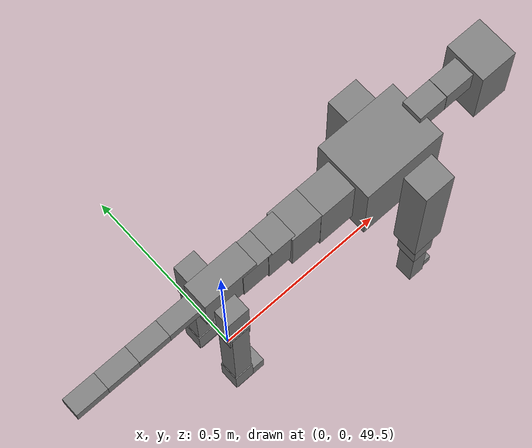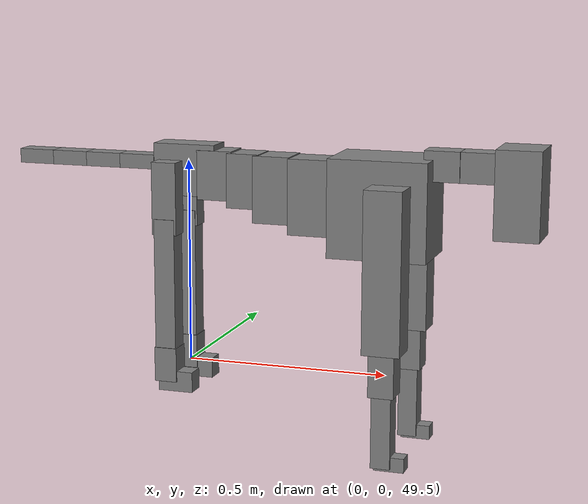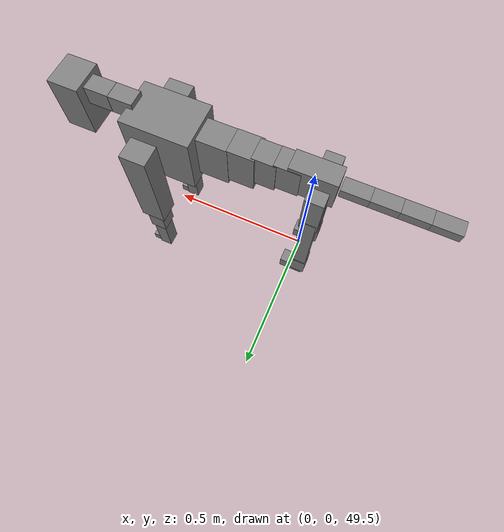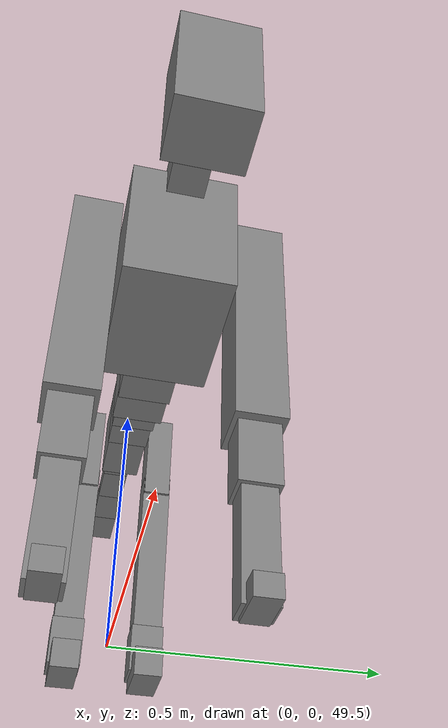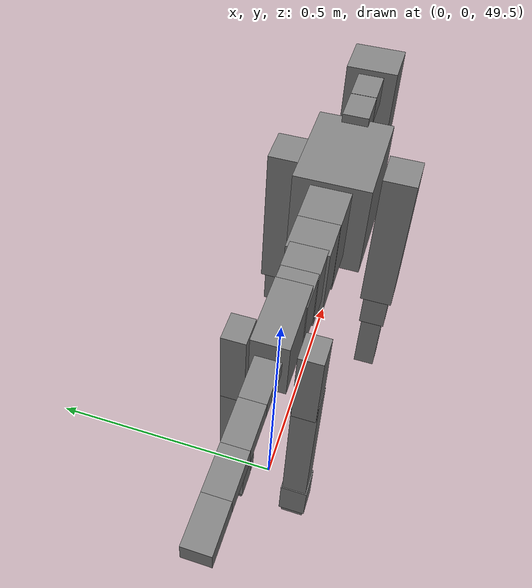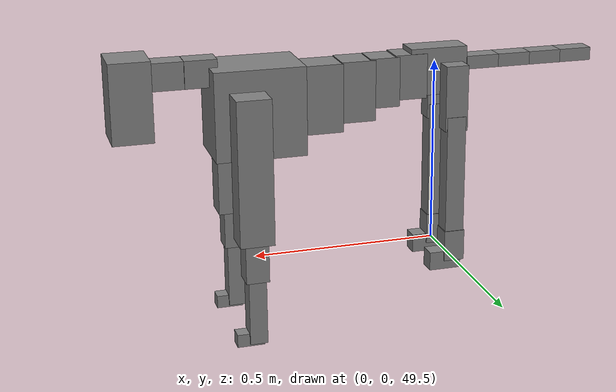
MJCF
<mujoco model="dog">

    <default>
        <joint armature="0.02" stiffness="1" damping="0.2" limited="true"/>
        <geom condim="3" friction="1 0.05 0.05" margin="0.01"/>
        <motor ctrllimited="true" ctrlrange="-1.0 1.0" forcelimited="true" gear="50"/>
    </default>

    <compiler inertiafromgeom="true" angle="radian"/>

    <option timestep="0.016" iterations="50" tolerance="1e-10" solver="Newton" jacobian="dense" cone="pyramidal"/>

    <size nconmax="20000" njmax="60000" nstack="5000000"/>
    <visual>
        <map force="0.1" zfar="30"/>
        <rgba haze="0.15 0.25 0.35 1"/>
        <quality shadowsize="2048"/>
        <global offwidth="800" offheight="800"/>
    </visual>

    <asset>
        <texture type="skybox" builtin="gradient" rgb1="0.3 0.5 0.7" rgb2="0 0 0" width="512" height="512"/>
        <texture name="texplane" type="2d" builtin="checker" rgb1=".2 .3 .4" rgb2=".1 0.15 0.2" width="512" height="512"
                 mark="cross" markrgb=".8 .8 .8"/>
        <texture name="texgeom" type="cube" builtin="flat" mark="cross" width="127" height="1278" rgb1="0.8 0.6 0.4"
                 rgb2="0.8 0.6 0.4" markrgb="1 1 1" random="0.01"/>

        <material name="matplane" reflectance="0.3" texture="texplane" texrepeat="1 1" texuniform="true"/>
        <material name="matgeom" texture="texgeom" texuniform="true" rgba="0.8 0.6 .4 1"/>
    </asset>

    <worldbody>
        <geom name="floor" pos="0 0 0" size="0 0 .25" type="plane" material="matplane" condim="3"/>

        <light directional="false" diffuse=".2 .2 .2" specular="0 0 0" pos="0 0 5" dir="0 0 -1" castshadow="false"/>
        <light mode="targetbodycom" target="torso" directional="false" diffuse=".8 .8 .8" specular="0.3 0.3 0.3"
               pos="0 0 4.0" dir="0 0 -1"/>

        <body name="root" pos="0 0 50">
            <freejoint name="root_1"/>
            <geom type="box" pos="0 0 -0.02" size="0.0774  0.0358  0.063" density="2030"/>

            <body name="spine1" pos="0.054 0 0">
                <joint name="spine1_y" axis="0 1 0" range="0 0.7" limited="true"/>
                <geom type="box" pos="0.02375 0 -0.03" size="0.04375  0.0375  0.05985" density="2030"/>

                <body name="spine2" pos="0.0612 0 0">
                    <joint name="spine2_y" axis="0 1 0" range="-0.15 0.15" limited="true"/>
                    <geom type="box" pos="0.03555  0  -0.04" size="0.04055  0.039  0.06615" density="2030"/>

                    <body name="spine3" pos="0.0730 0 0">
                        <joint name="spine3_y" axis="0 1 0" range="-0.15 0.15" limited="true"/>
                        <geom type="box" pos="0.03555  0  -0.057" size="0.04555  0.0445  0.081" density="2030"/>

                        <body name="spine4" pos="0.0780 0 0">
                            <joint name="spine4_y" axis="0 1 0" range="-0.15 0.15" limited="true"/>
                            <geom type="box" pos="0.05265  0  -0.07" size="0.05265  0.045  0.09135" density="2030"/>

                            <body name="torso" pos="0.1082 0 0">
                                <joint name="torso_y" axis="0 1 0" range="-0.15 0.15" limited="true"/>
                                <geom type="box" pos="0.11925  0  -0.085" size="0.11925  0.085  0.11745"
                                      density="2030"/>

                                <body name="neck1" pos="0.2160  0   0.0180">
                                    <joint name="neck1_y" axis="0 1 0" range="-1.2  -1" limited="true"/>
                                    <geom type="box" pos="0.0423  0  0" size="0.0423  0.03  0.036" density="2325"/>

                                    <body name="neck2" pos="0.0853  0  0">
                                        <joint name="neck2_y" axis="0 1 0" range="0.1  0" limited="true"/>
                                        <geom type="box" pos="0.0423  0  0" size="0.0423  0.03  0.036" density="2325"/>

                                        <body name="head" pos="0.0853  0  0">
                                            <joint name="head_y" axis="0 1 0" range="-0.3  -0.2" limited="true"/>
                                            <geom type="box" pos="0.0531  0  -0.055" size="0.0531  0.06  0.1044"
                                                  density="4030"/>

                                        </body>
                                    </body>
                                </body>

                                <body name="front_shoulder" pos="0.156  0   -0.0480">
                                    <joint name="front_shoulder_y" axis="0 1 0" range="-1 1.5" limited="true"/>
                                    <geom type="box" pos="0 0.13 -0.1658" size="0.0453  0.0387  0.1924" density="1158"/>
                                    <geom type="box" pos="0 -0.13 -0.1658" size="0.0453  0.0387  0.1924"
                                          density="1158"/>

                                    <body name="front_elbow" pos="0  0  -0.3316">
                                        <joint name="front_elbow_y" axis="0 1 0" range="-2 0" limited="true"/>
                                        <geom type="box" pos="0 0.13 -0.0642" size="0.0306  0.0313  0.0642"
                                              density="1081"/>
                                        <geom type="box" pos="0 -0.13 -0.0642" size="0.0306  0.0313  0.0642"
                                              density="1081"/>

                                        <body name="front_wrist" pos="0  0  -0.1284">
                                            <joint name="front_wrist_y" axis="0 1 0" range="-0.2 0" limited="true"/>
                                            <geom type="box" pos="0 0.13 -0.0798" size="0.0234  0.0260  0.0929"
                                                  density="1664"/>
                                            <geom type="box" pos="0 -0.13 -0.0798" size="0.0234  0.0260  0.0929"
                                                  density="1664"/>

                                            <body name="front_finger_end" pos="0  0  -0.1595">
                                                <joint name="front_finger_y" axis="0 1 0" range="-0.4 1"
                                                       limited="true"/>
                                                <geom type="box" pos="0.0197  0.13  -0.0023"
                                                      size="0.0361  0.0197  0.0173" density="1515"/>
                                                <geom type="box" pos="0.0197  -0.13  -0.0023"
                                                      size="0.0361  0.0197  0.0173" density="1515"/>

                                            </body>

                                        </body>
                                    </body>
                                </body>

                            </body>
                        </body>
                    </body>
                </body>
            </body>

            <body name="back_hip" pos="-0.03 0 -0.018">
                <joint name="back_hip_y" axis="0 1 0" range="-1.5 0.3" limited="true"/>
                <geom type="box" pos="0 0.07 -0.0654" size="0.0307  0.0241  0.0882" density="1154"/>
                <geom type="box" pos="0 -0.07 -0.0654" size="0.0307  0.0241  0.0882" density="1154"/>

                <body name="back_knee" pos="0  0  -0.1309">
                    <joint name="back_knee_y" axis="0 1 0" range="0 2.8" limited="true"/>
                    <geom type="box" pos="0 0.07 -0.1569" size="0.0258  0.0255  0.1725" density="1227"/>
                    <geom type="box" pos="0 -0.07 -0.1569" size="0.0258  0.0255  0.1725" density="1227"/>

                    <body name="back_ankle" pos="0  0  -0.3139">
                        <joint name="back_ankle_y" axis="0 1 0" range="-2.2 0" limited="true"/>
                        <geom type="box" pos="0 0.07 -0.0311" size="0.0280  0.0280  0.0423" density="1284"/>
                        <geom type="box" pos="0 -0.07 -0.0311" size="0.0280  0.0280  0.0423" density="1284"/>

                        <body name="back_toe_end" pos="0  0  -0.0621">
                            <joint name="back_toe_y" axis="0 1 0" range="-0.4 1" limited="true"/>
                            <geom type="box" pos="0.0238  0.07  -0.0101" size="0.0437  0.0238  0.0251" density="1515"/>
                            <geom type="box" pos="0.0238  -0.07  -0.0101" size="0.0437  0.0238  0.0251" density="1515"/>

                        </body>
                    </body>
                </body>
            </body>

            <body name="tail1" pos="-0.074 0 -0.006">
                <joint name="tail1_y" axis="0 1 0" range="-0.2 0.2" limited="true"/>
                <geom type="box" pos="-0.0536  0  0" size="0.045  0.025  0.0175" density="1587"/>

                <body name="tail2" pos="-0.09 0 0">
                    <joint name="tail2_y" axis="0 1 0" range="-0.2 0.2" limited="true"/>
                    <geom type="box" pos="-0.0536  0  0" size="0.045  0.025  0.0175" density="1587"/>

                    <body name="tail3" pos="-0.09 0 0">
                        <joint name="tail3_y" axis="0 1 0" range="-0.2 0.2" limited="true"/>
                        <geom type="box" pos="-0.0536  0  0" size="0.045  0.025  0.0175" density="1587"/>

                        <body name="tail4" pos="-0.09 0 0">
                            <joint name="tail4_y" axis="0 1 0" range="-0.2 0.2" limited="true"/>
                            <geom type="box" pos="-0.0536  0  0" size="0.045  0.025  0.0175" density="1587"/>

                        </body>
                    </body>
                </body>
            </body>
        </body>
    </worldbody>

    <actuator>
        <motor joint="spine1_y" forcerange="-150 150     "/>
        <motor joint="spine2_y" forcerange="-150 150     "/>
        <motor joint="spine3_y" forcerange="-150 150     "/>
        <motor joint="spine4_y" forcerange="-150 150     "/>
        <motor joint="torso_y" forcerange="-150 150     "/>
        <motor joint="neck1_y" forcerange="-100 100       "/>
        <motor joint="neck2_y" forcerange="-100 100       "/>
        <motor joint="head_y" forcerange="-150 150       "/>
        <motor joint="front_shoulder_y" forcerange="-198.58 159.73"/>
        <motor joint="front_elbow_y" forcerange="-141.53 186.06"/>
        <motor joint="front_wrist_y" forcerange="-84.89 123.19"/>
        <motor joint="front_finger_y" forcerange="-31.81 33.34"/>
        <motor joint="back_hip_y" forcerange="-201.10 320.07"/>
        <motor joint="back_knee_y" forcerange="-339.17 231.02"/>
        <motor joint="back_angle_y" forcerange="-133.24 214.04"/>
        <motor joint="back_toe_y" forcerange="-53.64 56.89"/>
        <motor joint="tail1_y" forcerange="-50 50     "/>
        <motor joint="tail2_y" forcerange="-50 50     "/>
        <motor joint="tail3_y" forcerange="-50 50     "/>
        <motor joint="tail4_y" forcerange="-50 50     "/>
    </actuator>
</mujoco>
